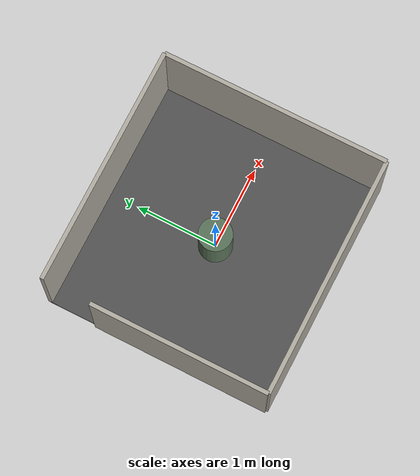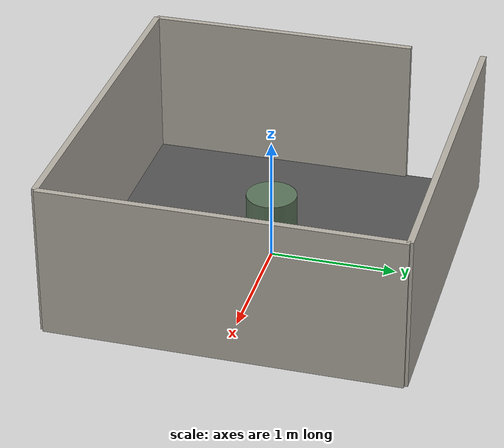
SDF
<?xml version="1.0" ?>
<sdf version="1.9">
  <world name="pig_pen_world">
    <gravity>0 0 -9.8</gravity>
    <magnetic_field>0 0 0</magnetic_field>
    <atmosphere type="adiabatic"/>

    <!-- Gazebo 核心系統：物理、命令與場景廣播 -->
    <plugin
      filename="gz-sim-physics-system"
      name="gz::sim::systems::Physics">
    </plugin>
    <plugin
      filename="gz-sim-user-commands-system"
      name="gz::sim::systems::UserCommands">
    </plugin>
    <plugin
      filename="gz-sim-scene-broadcaster-system"
      name="gz::sim::systems::SceneBroadcaster">
    </plugin>

    <!-- 太陽光源 -->
    <light name="sun" type="directional">
      <cast_shadows>true</cast_shadows>
      <pose>0 0 10 0 0 0</pose>
      <diffuse>0.9 0.9 0.9 1</diffuse>
      <specular>0.2 0.2 0.2 1</specular>
      <direction>-0.4 0.1 -1</direction>
    </light>

    <!-- 地板：整個豬舍的底面 -->
    <model name="floor">
      <static>true</static>
      <pose>0 0 0.01 0 0 0</pose>
      <link name="link">
        <collision name="collision">
          <geometry>
            <box>
              <size>2.89 2.75 0.02</size>
            </box>
          </geometry>
        </collision>
        <visual name="visual">
          <geometry>
            <box>
              <size>2.89 2.75 0.02</size>
            </box>
          </geometry>
          <material>
            <ambient>0.25 0.25 0.25 1</ambient>
            <diffuse>0.32 0.32 0.32 1</diffuse>
            <specular>0.05 0.05 0.05 1</specular>
          </material>
        </visual>
      </link>
    </model>

    <!-- 左側長牆 -->
    <model name="left_wall">
      <static>true</static>
      <pose>0 1.375 0.61 0 0 0</pose>
      <link name="link">
        <collision name="collision">
          <geometry>
            <box>
              <size>2.89 0.05 1.22</size>
            </box>
          </geometry>
        </collision>
        <visual name="visual">
          <geometry>
            <box>
              <size>2.89 0.05 1.22</size>
            </box>
          </geometry>
          <material>
            <ambient>0.70 0.68 0.64 1</ambient>
            <diffuse>0.70 0.68 0.64 1</diffuse>
          </material>
        </visual>
      </link>
    </model>

    <!-- 右側長牆 -->
    <model name="right_wall">
      <static>true</static>
      <pose>0 -1.375 0.61 0 0 0</pose>
      <link name="link">
        <collision name="collision">
          <geometry>
            <box>
              <size>2.89 0.05 1.22</size>
            </box>
          </geometry>
        </collision>
        <visual name="visual">
          <geometry>
            <box>
              <size>2.89 0.05 1.22</size>
            </box>
          </geometry>
          <material>
            <ambient>0.70 0.68 0.64 1</ambient>
            <diffuse>0.70 0.68 0.64 1</diffuse>
          </material>
        </visual>
      </link>
    </model>

    <!-- 後方直牆 -->
    <model name="back_wall">
      <static>true</static>
      <pose>1.445 0 0.61 0 0 0</pose>
      <link name="link">
        <collision name="collision">
          <geometry>
            <box>
              <size>0.05 2.75 1.22</size>
            </box>
          </geometry>
        </collision>
        <visual name="visual">
          <geometry>
            <box>
              <size>0.05 2.75 1.22</size>
            </box>
          </geometry>
          <material>
            <ambient>0.70 0.68 0.64 1</ambient>
            <diffuse>0.70 0.68 0.64 1</diffuse>
          </material>
        </visual>
      </link>
    </model>

    <!-- 前方左半牆：左側入口/開口區段 -->
    <model name="front_left_wall">
      <static>true</static>
      <pose>-1.445 -0.295 0.61 0 0 0</pose>
      <link name="link">
        <collision name="collision">
          <geometry>
            <box>
              <size>0.05 2.16 1.22</size>
            </box>
          </geometry>
        </collision>
        <visual name="visual">
          <geometry>
            <box>
              <size>0.05 2.16 1.22</size>
            </box>
          </geometry>
          <material>
            <ambient>0.70 0.68 0.64 1</ambient>
            <diffuse>0.70 0.68 0.64 1</diffuse>
          </material>
        </visual>
      </link>
    </model>

    <!-- 中央飼料盆 -->
    <model name="feeder">
      <static>true</static>
      <pose>0 0 0.275 0 0 0</pose>
      <link name="link">
        <collision name="collision">
          <geometry>
            <cylinder>
              <radius>0.20</radius>
              <length>0.55</length>
            </cylinder>
          </geometry>
        </collision>
        <visual name="visual">
          <geometry>
            <cylinder>
              <radius>0.20</radius>
              <length>0.55</length>
            </cylinder>
          </geometry>
          <material>
            <ambient>0.35 0.45 0.35 1</ambient>
            <diffuse>0.35 0.45 0.35 1</diffuse>
          </material>
        </visual>
      </link>
    </model>
  </world>
</sdf>
